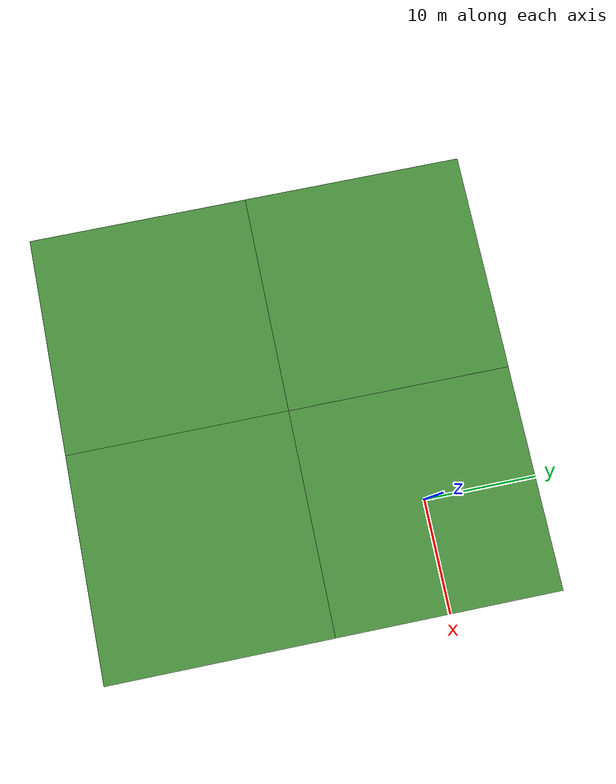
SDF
<?xml version='1.0'?>
<sdf version='1.4'>
  <model name='grass_plane'>
    <static>true</static>
    <link name='link'>
      <collision name='collision'>
        <geometry>
          <plane>
            <normal>0 0 1</normal>
            <size>500 500</size>
          </plane>
        </geometry>
        <surface>
          <friction>
            <ode>
              <mu>0.5</mu>
              <mu2>.5</mu2>
            </ode>
          </friction>
        </surface>
      </collision>

      <visual name='visual_0'>
        <pose>-0 0 0 0 0 0</pose>

        <cast_shadows>false</cast_shadows>
        <geometry>
          <plane>
            <normal>0 0 1</normal>
            <size>20 20</size>
          </plane>
        </geometry>
        <material>
          <script>
            <uri>model://grass_plane/materials/scripts</uri>
            <uri>model://grass_plane/materials/textures</uri>
            <name>vrc/grass</name>
          </script>
        </material>
      </visual>

      <visual name='visual_1'>
        <pose>-20 -20 0 0 0 0</pose>

        <cast_shadows>false</cast_shadows>
        <geometry>
          <plane>
            <normal>0 0 1</normal>
            <size>20 20</size>
          </plane>
        </geometry>
        <material>
          <script>
            <uri>model://grass_plane/materials/scripts</uri>
            <uri>model://grass_plane/materials/textures</uri>
            <name>vrc/grass</name>
          </script>
        </material>
      </visual>

      <visual name='visual_2'>
        <pose>0 -20 0 0 0 0</pose>

        <cast_shadows>false</cast_shadows>
        <geometry>
          <plane>
            <normal>0 0 1</normal>
            <size>20 20</size>
          </plane>
        </geometry>
        <material>
          <script>
            <uri>model://grass_plane/materials/scripts</uri>
            <uri>model://grass_plane/materials/textures</uri>
            <name>vrc/grass</name>
          </script>
        </material>
      </visual>

      <visual name='visual_3'>
        <pose>-20 0 0 0 0 0</pose>

        <cast_shadows>false</cast_shadows>
        <geometry>
          <plane>
            <normal>0 0 1</normal>
            <size>20 20</size>
          </plane>
        </geometry>
        <material>
          <script>
            <uri>model://grass_plane/materials/scripts</uri>
            <uri>model://grass_plane/materials/textures</uri>
            <name>vrc/grass</name>
          </script>
        </material>
      </visual>
    </link>
  </model>
</sdf>
